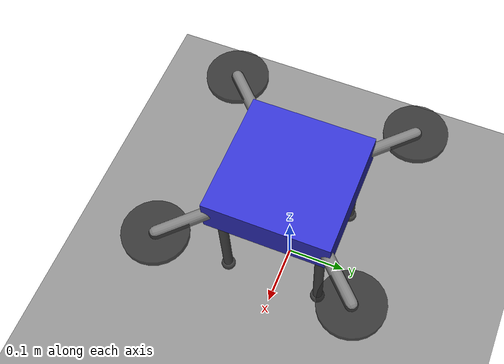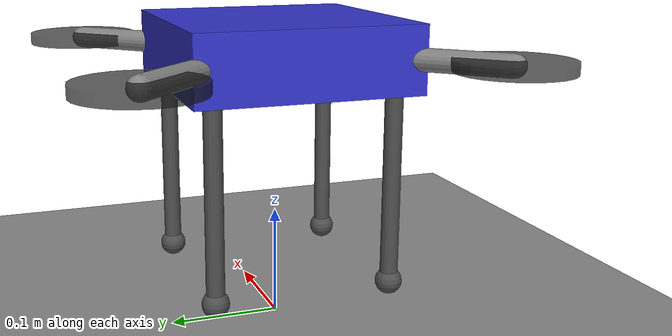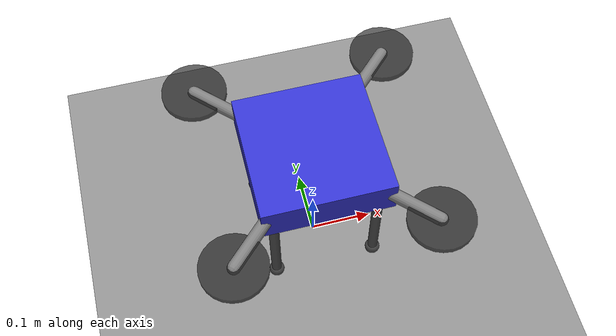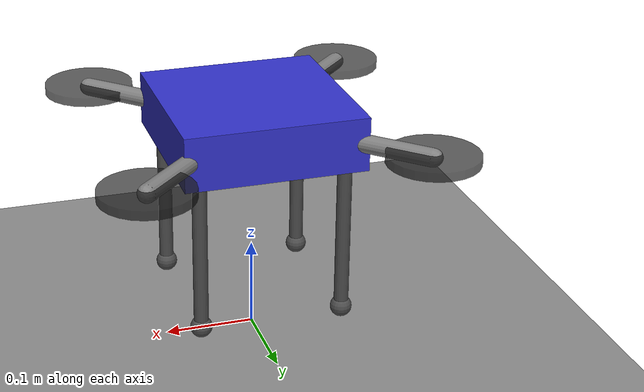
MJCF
<mujoco model="quad_scene">

    <compiler angle="radian" coordinate="local"/>
    <option gravity="0 0 -9.81" timestep="0.002"/>

    <visual>
        <headlight ambient="0.2 0.2 0.2" diffuse="0.4 0.4 0.4" specular="0.0 0.0 0.0"/>
        <quality shadowsize="8192"/>
        <map znear="0.005" zfar="100"/>
        <rgba haze="0.15 0.25 0.35 1"/>
    </visual>

    <asset>
        <texture name="grid" type="2d" builtin="checker" width="1024" height="1024"
                 rgb1="0.45 0.45 0.45" rgb2="0.65 0.65 0.65"/>
        <material name="grid_mat" texture="grid" texrepeat="5 5" texuniform="true"
                  reflectance="0.05"/>
        <texture name="sky" type="skybox" builtin="gradient"
                 rgb1="0.75 0.88 1.0" rgb2="0.08 0.18 0.45" width="512" height="512"/>
    </asset>

    <default>
        <joint damping="0.02"/>
        <geom contype="1" conaffinity="1"/>
        <default class="visual">
            <geom contype="0" conaffinity="0" mass="0"/>
        </default>
    </default>

    <worldbody>

        <geom name="ground" type="plane" size="30 30 0.1" material="grid_mat"/>

        <camera name="track" mode="trackcom" pos="3 -3 2" xyaxes="1 1 0 -0.4 0.4 1"/>
        <camera name="side"  mode="trackcom" pos="0 -5 1.5" xyaxes="1 0 0 0 0.3 1"/>
        <camera name="fixed" pos="4 4 3" xyaxes="-1 1 0 -0.5 -0.5 1"/>

        <light name="main_light"
           pos="0 0 5"
           dir="0 0 -1"
           diffuse="0.8 0.8 0.8"
           specular="0.5 0.5 0.5"
           ambient="0.2 0.2 0.2"
           directional="true"
           castshadow="true"/>

        <!-- ===== Quadrotor Base ===== -->
        <body name="base" pos="0 0 0.25">
            <joint name="free_joint" type="free"/>
            <inertial pos="0 0 0" mass="1.5" diaginertia="0.008 0.008 0.015"/>

            <!-- Main body -->
            <geom name="base_body" type="box" size="0.1 0.1 0.03" rgba="0.2 0.2 0.8 1"
                  contype="1" conaffinity="1" mass="0"/>

            <!-- X configuration arms (visual, no mass) -->
            <geom type="capsule" fromto="0 0 0 0.15 0.15 0" size="0.01" class="visual"/>
            <geom type="capsule" fromto="0 0 0 -0.15 0.15 0" size="0.01" class="visual"/>
            <geom type="capsule" fromto="0 0 0 -0.15 -0.15 0" size="0.01" class="visual"/>
            <geom type="capsule" fromto="0 0 0 0.15 -0.15 0" size="0.01" class="visual"/>

            <!-- Propellers (visual) -->
            <geom type="cylinder" pos="0.15 0.15 0" size="0.05 0.005" rgba="0.1 0.1 0.1 0.7" class="visual"/>
            <geom type="cylinder" pos="-0.15 0.15 0" size="0.05 0.005" rgba="0.1 0.1 0.1 0.7" class="visual"/>
            <geom type="cylinder" pos="-0.15 -0.15 0" size="0.05 0.005" rgba="0.1 0.1 0.1 0.7" class="visual"/>
            <geom type="cylinder" pos="0.15 -0.15 0" size="0.05 0.005" rgba="0.1 0.1 0.1 0.7" class="visual"/>

            <!-- Landing legs (visual, no mass) -->
            <geom type="capsule" fromto="0.08 0.08 -0.03 0.08 0.08 -0.20" size="0.008" rgba="0.3 0.3 0.3 1" class="visual"/>
            <geom type="capsule" fromto="-0.08 0.08 -0.03 -0.08 0.08 -0.20" size="0.008" rgba="0.3 0.3 0.3 1" class="visual"/>
            <geom type="capsule" fromto="-0.08 -0.08 -0.03 -0.08 -0.08 -0.20" size="0.008" rgba="0.3 0.3 0.3 1" class="visual"/>
            <geom type="capsule" fromto="0.08 -0.08 -0.03 0.08 -0.08 -0.20" size="0.008" rgba="0.3 0.3 0.3 1" class="visual"/>
            <!-- Landing feet (contact with ground) -->
            <geom type="sphere" pos="0.08 0.08 -0.20" size="0.012" rgba="0.3 0.3 0.3 1" mass="0"/>
            <geom type="sphere" pos="-0.08 0.08 -0.20" size="0.012" rgba="0.3 0.3 0.3 1" mass="0"/>
            <geom type="sphere" pos="-0.08 -0.08 -0.20" size="0.012" rgba="0.3 0.3 0.3 1" mass="0"/>
            <geom type="sphere" pos="0.08 -0.08 -0.20" size="0.012" rgba="0.3 0.3 0.3 1" mass="0"/>

            <!-- Platform site for force application -->
            <site name="platform_site" pos="0 0 0" size="0.01"/>

        </body>

    </worldbody>

    <!-- No actuators: thrust and torques applied via xfrc_applied -->

</mujoco>
